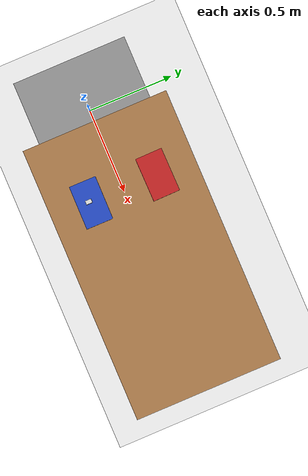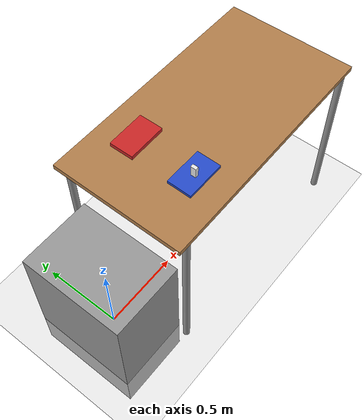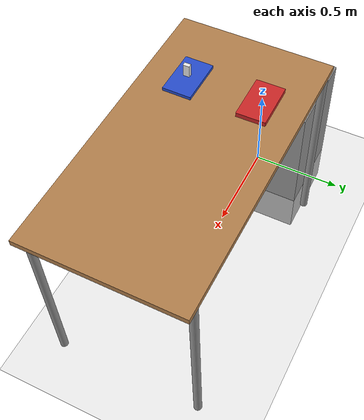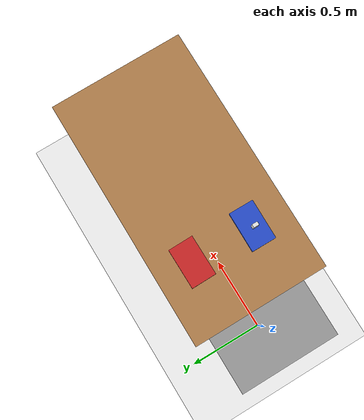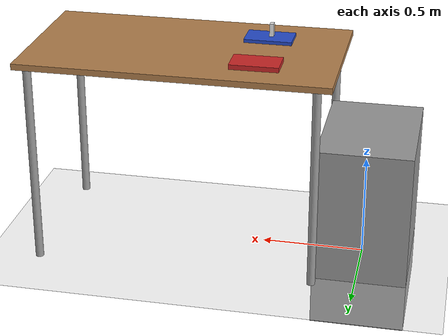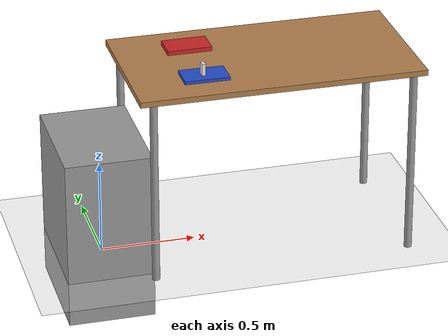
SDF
<sdf version="1.7">
 <world name="default">
  <light name="sun" type="directional">
   <cast_shadows>0</cast_shadows>
   <diffuse>1 1 1 1</diffuse>
   <specular>0.8 0.8 0.8 1</specular>
   <direction>-0.5 -0.5 -1</direction>
   <pose>0 0 2 0 -0 0</pose>
   <attenuation>
    <range>1000</range>
    <constant>1</constant>
    <linear>1</linear>
    <quadratic>0.001</quadratic>
   </attenuation>
   <spot><inner_angle>0</inner_angle><outer_angle>0</outer_angle><falloff>0</falloff></spot>
  </light>
  <scene><ambient>0.4 0.4 0.4 1</ambient><background>0.7 0.7 0.7 1</background><shadows>0</shadows></scene>
  <model name="ground_plane">
   <static>1</static>
   <link name="link">
    <collision name="collision">
     <geometry><plane><size>100 100</size><normal>0 0 1</normal></plane></geometry>
    </collision>
    <visual name="visual">
     <geometry><plane><size>100 100</size><normal>0 0 1</normal></plane></geometry>
     <material>
      <script><uri>file://media/materials/scripts/gazebo.material</uri><name>Gazebo/Grey</name></script>
     </material>
    </visual>
    <kinematic>1</kinematic>
   </link>
  </model>
  <model name="stone">
   <pose>0.507397 -0.18947 1.06371 9.5e-05 -3.8e-05 0.00303</pose>
   <link name="link">
    <inertial>
     <mass>0.05</mass>
     <inertia><ixx>0.001</ixx><ixy>0</ixy><ixz>0</ixz><iyy>0.001</iyy><iyz>0</iyz><izz>0.001</izz></inertia>
    </inertial>
    <collision name="collision">
     <geometry><box><size>0.02 0.032 0.064</size></box></geometry>
     <surface>
      <contact><ode><max_vel>0</max_vel><min_depth>0.003</min_depth></ode></contact>
      <friction><ode><mu>1.13</mu><mu2>1.13</mu2></ode></friction>
     </surface>
    </collision>
    <visual name="visual">
     <geometry><box><size>0.02 0.032 0.064</size></box></geometry>
     <material>
      <script><uri>file://media/materials/scripts/gazebo.material</uri><name>Gazebo/White</name></script>
     </material>
    </visual>
   </link>
  </model>
  <gravity>0 0 -9.8</gravity>
  <magnetic_field>6e-06 2.3e-05 -4.2e-05</magnetic_field>
  <atmosphere type="adiabatic"/>
  <physics name="default_physics" default="0" type="ode">
   <max_step_size>0.001</max_step_size>
   <real_time_factor>1</real_time_factor>
   <real_time_update_rate>1000</real_time_update_rate>
  </physics>
  <scene><ambient>0.4 0.4 0.4 1</ambient><background>0.7 0.7 0.7 1</background><shadows>1</shadows></scene>
  <audio><device>default</device></audio>
  <spherical_coordinates>
   <surface_model>EARTH_WGS84</surface_model>
   <latitude_deg>0</latitude_deg>
   <longitude_deg>0</longitude_deg>
   <elevation>0</elevation>
   <heading_deg>0</heading_deg>
  </spherical_coordinates>
  <model name="place_tray">
   <pose>0.516285 0.188704 1.02667 2e-06 5e-06 0.01087</pose>
   <link name="link">
    <inertial>
     <mass>1</mass>
     <inertia>
      <ixx>0.166667</ixx>
      <ixy>0</ixy>
      <ixz>0</ixz>
      <iyy>0.166667</iyy>
      <iyz>0</iyz>
      <izz>0.166667</izz>
     </inertia>
    </inertial>
    <collision name="collision">
     <geometry><box><size>0.235035 0.144926 0.023348</size></box></geometry>
    </collision>
    <visual name="visual">
     <geometry><box><size>0.235035 0.144926 0.023348</size></box></geometry>
     <material>
      <script><name>Gazebo/Red</name><uri>file://media/materials/scripts/gazebo.material</uri></script>
     </material>
    </visual>
   </link>
  </model>
  <model name="table">
   <static>1</static>
   <pose>-0.016428 0.000584 0.209863 -4.5e-05 -1.6e-05 1.8e-05</pose>
   <link name="link">
    <inertial>
     <mass>1</mass>
     <inertia>
      <ixx>0.166667</ixx>
      <ixy>0</ixy>
      <ixz>0</ixz>
      <iyy>0.166667</iyy>
      <iyz>0</iyz>
      <izz>0.166667</izz>
     </inertia>
    </inertial>
    <collision name="collision">
     <geometry><box><size>0.453157 0.642049 0.907564</size></box></geometry>
    </collision>
    <visual name="visual">
     <geometry><box><size>0.453157 0.642049 0.907564</size></box></geometry>
     <material>
      <script><name>Gazebo/Grey</name><uri>file://media/materials/scripts/gazebo.material</uri></script>
     </material>
    </visual>
   </link>
  </model>
  <model name="pick_tray">
   <pose>0.515345 -0.181766 1.02004 8.9e-05 -3.7e-05 -0.006065</pose>
   <link name="link">
    <inertial>
     <mass>1</mass>
     <inertia>
      <ixx>0.166667</ixx>
      <ixy>0</ixy>
      <ixz>0</ixz>
      <iyy>0.166667</iyy>
      <iyz>0</iyz>
      <izz>0.166667</izz>
     </inertia>
    </inertial>
    <collision name="collision">
     <geometry><box><size>0.235035 0.144926 0.023348</size></box></geometry>
    </collision>
    <visual name="visual">
     <geometry><box><size>0.235035 0.144926 0.023348</size></box></geometry>
     <material>
      <script><name>Gazebo/Blue</name><uri>file://media/materials/scripts/gazebo.material</uri></script>
     </material>
    </visual>
   </link>
  </model>
  <model name="table_0">
   <static>1</static>
   <link name="link">
    <collision name="surface">
     <pose>0 0 1 0 -0 0</pose>
     <geometry><box><size>1.5 0.8 0.03</size></box></geometry>
     <surface><friction><ode><mu>0.6</mu><mu2>0.6</mu2></ode></friction></surface>
    </collision>
    <visual name="visual1">
     <pose>0 0 1 0 -0 0</pose>
     <geometry><box><size>1.5 0.8 0.03</size></box></geometry>
     <material>
      <script><uri>file://media/materials/scripts/gazebo.material</uri><name>Gazebo/Wood</name></script>
     </material>
    </visual>
    <collision name="front_left_leg">
     <pose>0.68 0.38 0.5 0 -0 0</pose>
     <geometry><cylinder><radius>0.02</radius><length>1</length></cylinder></geometry>
    </collision>
    <visual name="front_left_leg">
     <pose>0.68 0.38 0.5 0 -0 0</pose>
     <geometry><cylinder><radius>0.02</radius><length>1</length></cylinder></geometry>
     <material>
      <script><uri>file://media/materials/scripts/gazebo.material</uri><name>Gazebo/Grey</name></script>
     </material>
    </visual>
    <collision name="front_right_leg">
     <pose>0.68 -0.38 0.5 0 -0 0</pose>
     <geometry><cylinder><radius>0.02</radius><length>1</length></cylinder></geometry>
    </collision>
    <visual name="front_right_leg">
     <pose>0.68 -0.38 0.5 0 -0 0</pose>
     <geometry><cylinder><radius>0.02</radius><length>1</length></cylinder></geometry>
     <material>
      <script><uri>file://media/materials/scripts/gazebo.material</uri><name>Gazebo/Grey</name></script>
     </material>
    </visual>
    <collision name="back_right_leg">
     <pose>-0.68 -0.38 0.5 0 -0 0</pose>
     <geometry><cylinder><radius>0.02</radius><length>1</length></cylinder></geometry>
    </collision>
    <visual name="back_right_leg">
     <pose>-0.68 -0.38 0.5 0 -0 0</pose>
     <geometry><cylinder><radius>0.02</radius><length>1</length></cylinder></geometry>
     <material>
      <script><uri>file://media/materials/scripts/gazebo.material</uri><name>Gazebo/Grey</name></script>
     </material>
    </visual>
    <collision name="back_left_leg">
     <pose>-0.68 0.38 0.5 0 -0 0</pose>
     <geometry><cylinder><radius>0.02</radius><length>1</length></cylinder></geometry>
    </collision>
    <visual name="back_left_leg">
     <pose>-0.68 0.38 0.5 0 -0 0</pose>
     <geometry><cylinder><radius>0.02</radius><length>1</length></cylinder></geometry>
     <material>
      <script><uri>file://media/materials/scripts/gazebo.material</uri><name>Gazebo/Grey</name></script>
     </material>
    </visual>
   </link>
   <pose>0.88357 -0.000657 0 0 -0 0</pose>
  </model>
 </world>
</sdf>
